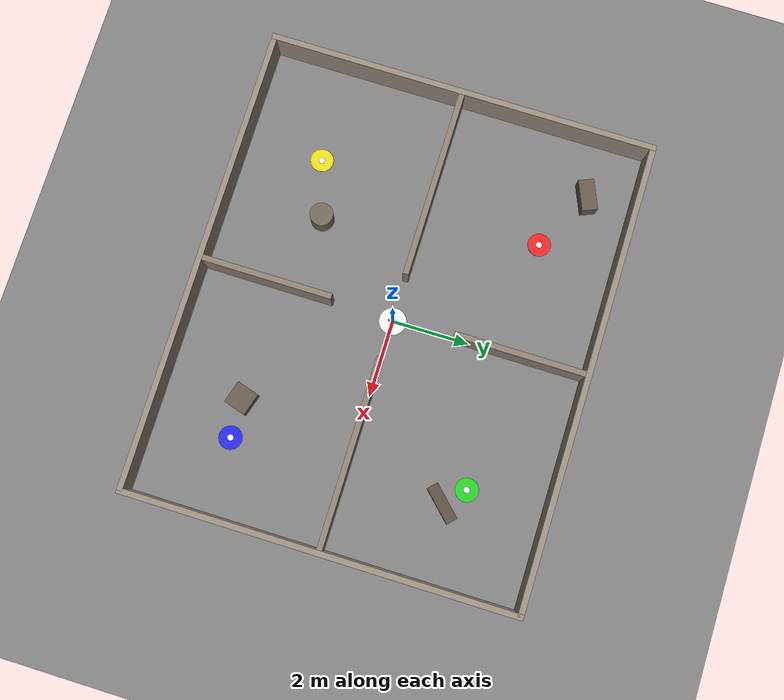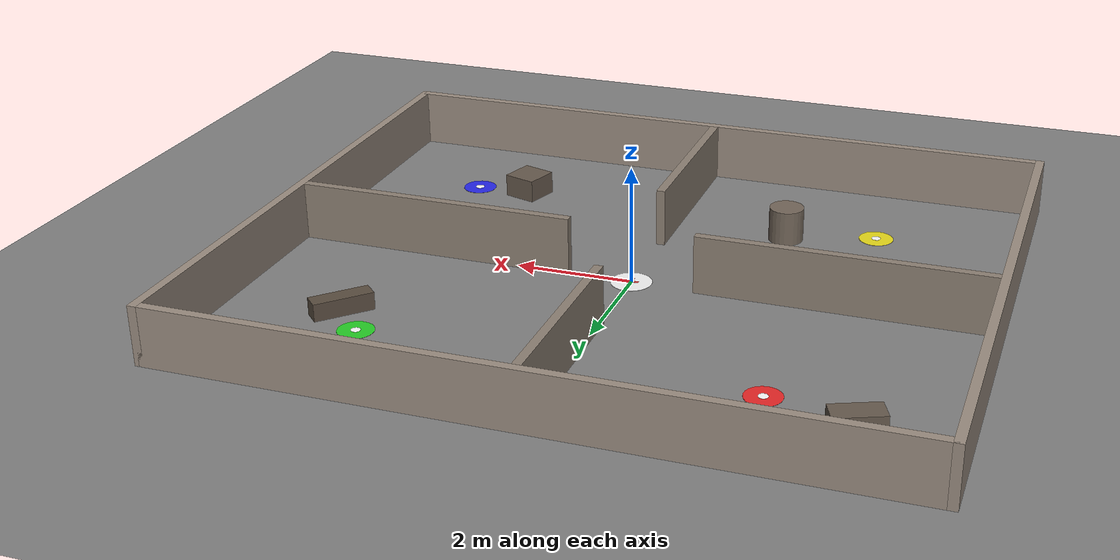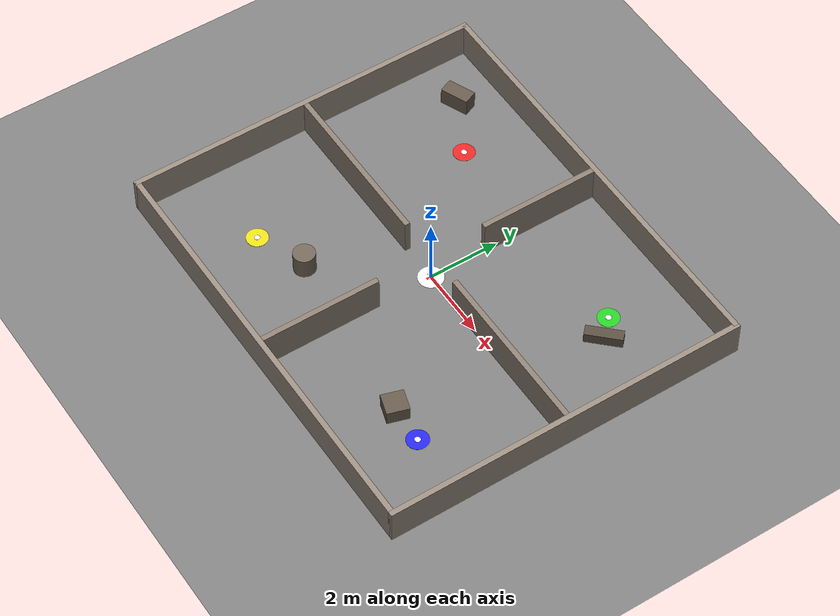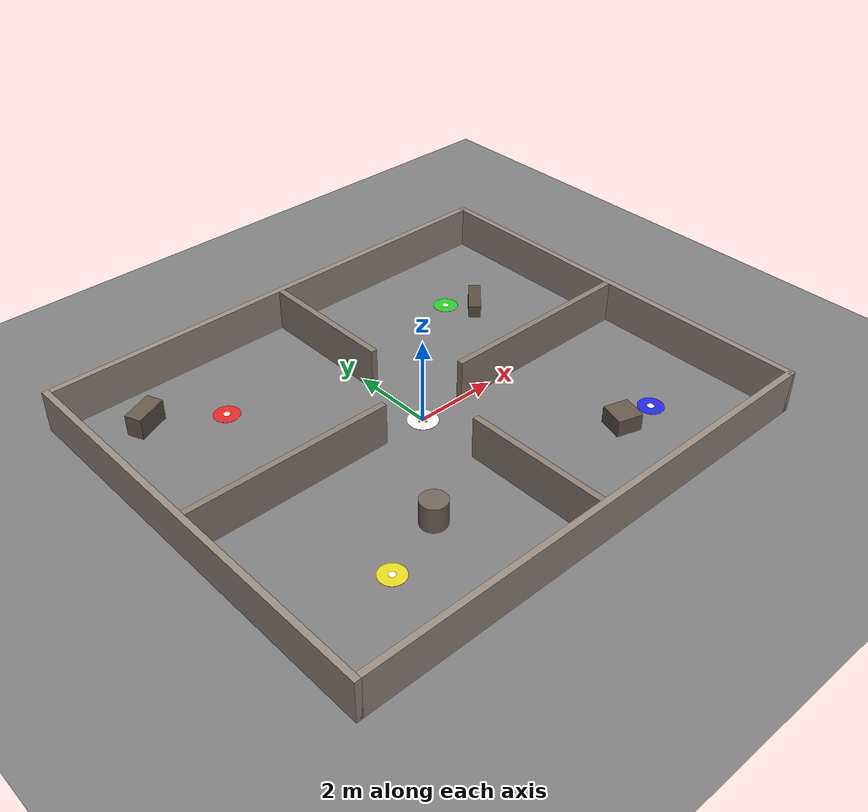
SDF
<?xml version="1.0" ?>
<sdf version="1.6">
  <world name="final_project">
    <physics name="1ms" type="ignored">
      <max_step_size>0.004</max_step_size>
      <real_time_factor>1.0</real_time_factor>
    </physics>

    <plugin filename="gz-sim-contact-system" name="gz::sim::systems::Contact" />
    <plugin filename="gz-sim-imu-system" name="gz::sim::systems::Imu" />
    <plugin filename="gz-sim-physics-system" name="gz::sim::systems::Physics" />
    <plugin filename="gz-sim-scene-broadcaster-system" name="gz::sim::systems::SceneBroadcaster" />
    <plugin filename="gz-sim-sensors-system" name="gz::sim::systems::Sensors" />
    <plugin filename="gz-sim-user-commands-system" name="gz::sim::systems::UserCommands" />

    <spherical_coordinates>
      <surface_model>EARTH_WGS84</surface_model>
      <world_frame_orientation>ENU</world_frame_orientation>
      <latitude_deg>50.088384</latitude_deg>
      <longitude_deg>19.939128</longitude_deg>
      <elevation>0</elevation>
      <heading_deg>0</heading_deg>
    </spherical_coordinates>

    <light type="directional" name="sun">
      <cast_shadows>true</cast_shadows>
      <pose>0 0 10 0 0 0</pose>
      <diffuse>0.8 0.8 0.8 1</diffuse>
      <specular>0.2 0.2 0.2 1</specular>
      <attenuation>
        <range>1000</range>
        <constant>0.9</constant>
        <linear>0.01</linear>
        <quadratic>0.001</quadratic>
      </attenuation>
      <direction>-0.5 0.1 -0.9</direction>
    </light>

    <!-- Ground plane                                                       -->
    <model name="ground_plane">
      <static>true</static>
      <link name="link">
        <collision name="collision">
          <geometry>
            <plane>
              <normal>0 0 1</normal>
              <size>100 100</size>
            </plane>
          </geometry>
        </collision>
        <visual name="visual">
          <geometry>
            <plane>
              <normal>0 0 1</normal>
              <size>100 100</size>
            </plane>
          </geometry>
          <material>
            <ambient>0.5 0.5 0.5 1</ambient>
            <diffuse>0.5 0.5 0.5 1</diffuse>
            <specular>0.5 0.5 0.5 1</specular>
          </material>
        </visual>
      </link>
    </model>

    <!-- Disaster zone: walls forming rooms and corridors.                  -->
    <!-- The robot starts at the origin (base station).                    -->
    <!-- Four search zones are placed at accessible locations.             -->
    <!-- Wall height: 1.0 m, thickness: 0.15 m                            -->

    <!-- Outer walls (12 m x 10 m perimeter) -->

    <!-- North wall -->
    <model name="wall_north">
      <static>true</static>
      <link name="link">
        <pose>0 5.0 0.5 0 0 0</pose>
        <collision name="collision">
          <geometry><box><size>12.0 0.15 1.0</size></box></geometry>
        </collision>
        <visual name="visual">
          <geometry><box><size>12.0 0.15 1.0</size></box></geometry>
          <material>
            <ambient>0.6 0.55 0.5 1</ambient>
            <diffuse>0.6 0.55 0.5 1</diffuse>
            <specular>0.1 0.1 0.1 1</specular>
          </material>
        </visual>
      </link>
    </model>

    <!-- South wall -->
    <model name="wall_south">
      <static>true</static>
      <link name="link">
        <pose>0 -5.0 0.5 0 0 0</pose>
        <collision name="collision">
          <geometry><box><size>12.0 0.15 1.0</size></box></geometry>
        </collision>
        <visual name="visual">
          <geometry><box><size>12.0 0.15 1.0</size></box></geometry>
          <material>
            <ambient>0.6 0.55 0.5 1</ambient>
            <diffuse>0.6 0.55 0.5 1</diffuse>
            <specular>0.1 0.1 0.1 1</specular>
          </material>
        </visual>
      </link>
    </model>

    <!-- East wall -->
    <model name="wall_east">
      <static>true</static>
      <link name="link">
        <pose>6.0 0 0.5 0 0 0</pose>
        <collision name="collision">
          <geometry><box><size>0.15 10.15 1.0</size></box></geometry>
        </collision>
        <visual name="visual">
          <geometry><box><size>0.15 10.15 1.0</size></box></geometry>
          <material>
            <ambient>0.6 0.55 0.5 1</ambient>
            <diffuse>0.6 0.55 0.5 1</diffuse>
            <specular>0.1 0.1 0.1 1</specular>
          </material>
        </visual>
      </link>
    </model>

    <!-- West wall -->
    <model name="wall_west">
      <static>true</static>
      <link name="link">
        <pose>-6.0 0 0.5 0 0 0</pose>
        <collision name="collision">
          <geometry><box><size>0.15 10.15 1.0</size></box></geometry>
        </collision>
        <visual name="visual">
          <geometry><box><size>0.15 10.15 1.0</size></box></geometry>
          <material>
            <ambient>0.6 0.55 0.5 1</ambient>
            <diffuse>0.6 0.55 0.5 1</diffuse>
            <specular>0.1 0.1 0.1 1</specular>
          </material>
        </visual>
      </link>
    </model>

    <!-- Interior walls creating rooms -->

    <!-- Horizontal divider (left half) - creates NW and SW rooms -->
    <model name="wall_h_left">
      <static>true</static>
      <link name="link">
        <pose>-3.5 0 0.5 0 0 0</pose>
        <collision name="collision">
          <geometry><box><size>4.85 0.15 1.0</size></box></geometry>
        </collision>
        <visual name="visual">
          <geometry><box><size>4.85 0.15 1.0</size></box></geometry>
          <material>
            <ambient>0.55 0.50 0.45 1</ambient>
            <diffuse>0.55 0.50 0.45 1</diffuse>
            <specular>0.1 0.1 0.1 1</specular>
          </material>
        </visual>
      </link>
    </model>

    <!-- Horizontal divider (right half) - creates NE and SE rooms -->
    <model name="wall_h_right">
      <static>true</static>
      <link name="link">
        <pose>3.5 0 0.5 0 0 0</pose>
        <collision name="collision">
          <geometry><box><size>4.85 0.15 1.0</size></box></geometry>
        </collision>
        <visual name="visual">
          <geometry><box><size>4.85 0.15 1.0</size></box></geometry>
          <material>
            <ambient>0.55 0.50 0.45 1</ambient>
            <diffuse>0.55 0.50 0.45 1</diffuse>
            <specular>0.1 0.1 0.1 1</specular>
          </material>
        </visual>
      </link>
    </model>

    <!-- Vertical divider (top half) - creates NW and NE rooms -->
    <model name="wall_v_top">
      <static>true</static>
      <link name="link">
        <pose>0 3.25 0.5 0 0 0</pose>
        <collision name="collision">
          <geometry><box><size>0.15 3.35 1.0</size></box></geometry>
        </collision>
        <visual name="visual">
          <geometry><box><size>0.15 3.35 1.0</size></box></geometry>
          <material>
            <ambient>0.55 0.50 0.45 1</ambient>
            <diffuse>0.55 0.50 0.45 1</diffuse>
            <specular>0.1 0.1 0.1 1</specular>
          </material>
        </visual>
      </link>
    </model>

    <!-- Vertical divider (bottom half) - creates SW and SE rooms -->
    <model name="wall_v_bottom">
      <static>true</static>
      <link name="link">
        <pose>0 -3.25 0.5 0 0 0</pose>
        <collision name="collision">
          <geometry><box><size>0.15 3.35 1.0</size></box></geometry>
        </collision>
        <visual name="visual">
          <geometry><box><size>0.15 3.35 1.0</size></box></geometry>
          <material>
            <ambient>0.55 0.50 0.45 1</ambient>
            <diffuse>0.55 0.50 0.45 1</diffuse>
            <specular>0.1 0.1 0.1 1</specular>
          </material>
        </visual>
      </link>
    </model>

    <!-- Debris / obstacles inside rooms -->

    <model name="debris_1">
      <static>true</static>
      <link name="link">
        <pose>-4.5 3.8 0.25 0 0 0.4</pose>
        <collision name="collision">
          <geometry><box><size>0.8 0.4 0.5</size></box></geometry>
        </collision>
        <visual name="visual">
          <geometry><box><size>0.8 0.4 0.5</size></box></geometry>
          <material>
            <ambient>0.4 0.35 0.3 1</ambient>
            <diffuse>0.4 0.35 0.3 1</diffuse>
            <specular>0.05 0.05 0.05 1</specular>
          </material>
        </visual>
      </link>
    </model>

    <model name="debris_2">
      <static>true</static>
      <link name="link">
        <pose>3.0 -3.0 0.2 0 0 -0.3</pose>
        <collision name="collision">
          <geometry><box><size>0.6 0.6 0.4</size></box></geometry>
        </collision>
        <visual name="visual">
          <geometry><box><size>0.6 0.6 0.4</size></box></geometry>
          <material>
            <ambient>0.4 0.35 0.3 1</ambient>
            <diffuse>0.4 0.35 0.3 1</diffuse>
            <specular>0.05 0.05 0.05 1</specular>
          </material>
        </visual>
      </link>
    </model>

    <model name="debris_3">
      <static>true</static>
      <link name="link">
        <pose>4.0 2.5 0.15 0 0 0.8</pose>
        <collision name="collision">
          <geometry><box><size>1.0 0.3 0.3</size></box></geometry>
        </collision>
        <visual name="visual">
          <geometry><box><size>1.0 0.3 0.3</size></box></geometry>
          <material>
            <ambient>0.35 0.30 0.25 1</ambient>
            <diffuse>0.35 0.30 0.25 1</diffuse>
            <specular>0.05 0.05 0.05 1</specular>
          </material>
        </visual>
      </link>
    </model>

    <model name="debris_4">
      <static>true</static>
      <link name="link">
        <pose>-2.0 -2.5 0.3 0 0 1.2</pose>
        <collision name="collision">
          <geometry><cylinder><radius>0.3</radius><length>0.6</length></cylinder></geometry>
        </collision>
        <visual name="visual">
          <geometry><cylinder><radius>0.3</radius><length>0.6</length></cylinder></geometry>
          <material>
            <ambient>0.45 0.40 0.35 1</ambient>
            <diffuse>0.45 0.40 0.35 1</diffuse>
            <specular>0.05 0.05 0.05 1</specular>
          </material>
        </visual>
      </link>
    </model>

    <!-- Search zone markers (visual only, no collision).                   -->
    <!-- Each zone is a colored disk on the floor with a label.             -->
    <!-- These are visual cues only -- the robot does not perceive them.    -->
    <!--   Zone A: (-3.0,  3.0)  -- NW room (red)    -- has survivor       -->
    <!--   Zone B: ( 3.5,  3.0)  -- NE room (green)  -- no survivor        -->
    <!--   Zone C: ( 4.0, -3.0)  -- SE room (blue)   -- has survivor       -->
    <!--   Zone D: (-3.5, -3.0)  -- SW room (yellow)  -- no survivor       -->
    <!--   Base:   ( 0.0,  0.0)  -- center (white)                         -->

    <!-- Zone A marker (NW room, red) -->
    <model name="zone_a_marker">
      <static>true</static>
      <link name="link">
        <pose>-3.0 3.0 0.003 0 0 0</pose>
        <visual name="disk">
          <geometry>
            <cylinder>
              <radius>0.30</radius>
              <length>0.005</length>
            </cylinder>
          </geometry>
          <material>
            <ambient>0.90 0.15 0.15 1</ambient>
            <diffuse>0.90 0.15 0.15 1</diffuse>
            <specular>0.10 0.10 0.10 1</specular>
          </material>
        </visual>
        <visual name="label">
          <pose>0 0 0.006 0 0 0</pose>
          <geometry>
            <cylinder>
              <radius>0.08</radius>
              <length>0.002</length>
            </cylinder>
          </geometry>
          <material>
            <ambient>1.0 1.0 1.0 1</ambient>
            <diffuse>1.0 1.0 1.0 1</diffuse>
            <specular>0.1 0.1 0.1 1</specular>
          </material>
        </visual>
      </link>
    </model>

    <!-- Zone B marker (NE room, green) -->
    <model name="zone_b_marker">
      <static>true</static>
      <link name="link">
        <pose>3.5 3.0 0.003 0 0 0</pose>
        <visual name="disk">
          <geometry>
            <cylinder>
              <radius>0.30</radius>
              <length>0.005</length>
            </cylinder>
          </geometry>
          <material>
            <ambient>0.15 0.80 0.15 1</ambient>
            <diffuse>0.15 0.80 0.15 1</diffuse>
            <specular>0.10 0.10 0.10 1</specular>
          </material>
        </visual>
        <visual name="label">
          <pose>0 0 0.006 0 0 0</pose>
          <geometry>
            <cylinder>
              <radius>0.08</radius>
              <length>0.002</length>
            </cylinder>
          </geometry>
          <material>
            <ambient>1.0 1.0 1.0 1</ambient>
            <diffuse>1.0 1.0 1.0 1</diffuse>
            <specular>0.1 0.1 0.1 1</specular>
          </material>
        </visual>
      </link>
    </model>

    <!-- Zone C marker (SE room, blue) -->
    <model name="zone_c_marker">
      <static>true</static>
      <link name="link">
        <pose>4.0 -3.0 0.003 0 0 0</pose>
        <visual name="disk">
          <geometry>
            <cylinder>
              <radius>0.30</radius>
              <length>0.005</length>
            </cylinder>
          </geometry>
          <material>
            <ambient>0.15 0.15 0.90 1</ambient>
            <diffuse>0.15 0.15 0.90 1</diffuse>
            <specular>0.10 0.10 0.10 1</specular>
          </material>
        </visual>
        <visual name="label">
          <pose>0 0 0.006 0 0 0</pose>
          <geometry>
            <cylinder>
              <radius>0.08</radius>
              <length>0.002</length>
            </cylinder>
          </geometry>
          <material>
            <ambient>1.0 1.0 1.0 1</ambient>
            <diffuse>1.0 1.0 1.0 1</diffuse>
            <specular>0.1 0.1 0.1 1</specular>
          </material>
        </visual>
      </link>
    </model>

    <!-- Zone D marker (SW room, yellow) -->
    <model name="zone_d_marker">
      <static>true</static>
      <link name="link">
        <pose>-3.5 -3.0 0.003 0 0 0</pose>
        <visual name="disk">
          <geometry>
            <cylinder>
              <radius>0.30</radius>
              <length>0.005</length>
            </cylinder>
          </geometry>
          <material>
            <ambient>0.90 0.85 0.10 1</ambient>
            <diffuse>0.90 0.85 0.10 1</diffuse>
            <specular>0.10 0.10 0.10 1</specular>
          </material>
        </visual>
        <visual name="label">
          <pose>0 0 0.006 0 0 0</pose>
          <geometry>
            <cylinder>
              <radius>0.08</radius>
              <length>0.002</length>
            </cylinder>
          </geometry>
          <material>
            <ambient>1.0 1.0 1.0 1</ambient>
            <diffuse>1.0 1.0 1.0 1</diffuse>
            <specular>0.1 0.1 0.1 1</specular>
          </material>
        </visual>
      </link>
    </model>

    <!-- Base station marker (center, white) -->
    <model name="base_station_marker">
      <static>true</static>
      <link name="link">
        <pose>0 0 0.003 0 0 0</pose>
        <visual name="disk">
          <geometry>
            <cylinder>
              <radius>0.35</radius>
              <length>0.005</length>
            </cylinder>
          </geometry>
          <material>
            <ambient>0.95 0.95 0.95 1</ambient>
            <diffuse>0.95 0.95 0.95 1</diffuse>
            <specular>0.10 0.10 0.10 1</specular>
          </material>
        </visual>
        <visual name="cross_h">
          <pose>0 0 0.006 0 0 0</pose>
          <geometry>
            <box><size>0.25 0.05 0.002</size></box>
          </geometry>
          <material>
            <ambient>0.90 0.15 0.15 1</ambient>
            <diffuse>0.90 0.15 0.15 1</diffuse>
            <specular>0.1 0.1 0.1 1</specular>
          </material>
        </visual>
        <visual name="cross_v">
          <pose>0 0 0.006 0 0 0</pose>
          <geometry>
            <box><size>0.05 0.25 0.002</size></box>
          </geometry>
          <material>
            <ambient>0.90 0.15 0.15 1</ambient>
            <diffuse>0.90 0.15 0.15 1</diffuse>
            <specular>0.1 0.1 0.1 1</specular>
          </material>
        </visual>
      </link>
    </model>

  </world>
</sdf>
